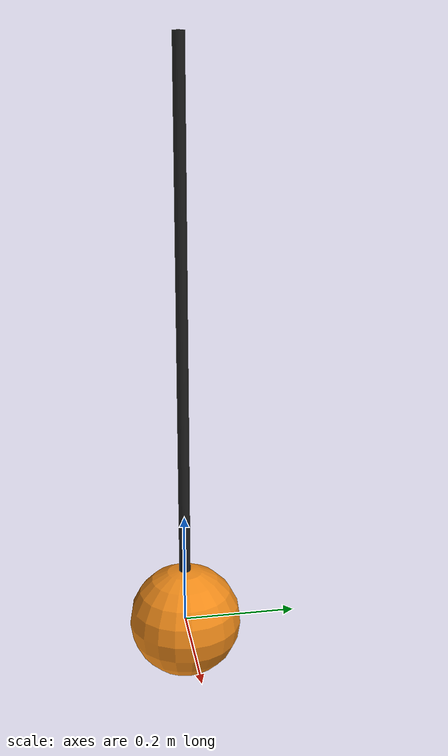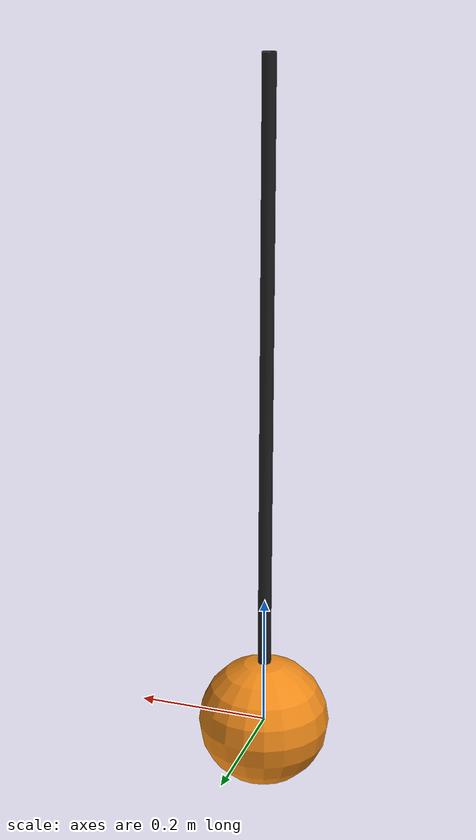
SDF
<?xml version="1.0" ?>
<sdf version="1.5">
  <model name="slung_payload_ball">
    <link name="link">
      <inertial>
        <mass>0.05</mass>
        <inertia>
          <ixx>0.00021</ixx>
          <ixy>0</ixy>
          <ixz>0</ixz>
          <iyy>0.00021</iyy>
          <iyz>0</iyz>
          <izz>0.00021</izz>
        </inertia>
      </inertial>
      <collision name="collision">
        <geometry>
          <sphere>
            <radius>0.10</radius>
          </sphere>
        </geometry>
        <surface>
          <collide_bitmask>0</collide_bitmask>
        </surface>
      </collision>
      <visual name="payload_visual">
        <geometry>
          <sphere>
            <radius>0.10</radius>
          </sphere>
        </geometry>
        <material>
          <script>
            <name>Gazebo/Orange</name>
            <uri>file://media/materials/scripts/gazebo.material</uri>
          </script>
        </material>
      </visual>
      <visual name="cable_visual">
        <pose>0 0 0.5 0 0 0</pose>
        <geometry>
          <cylinder>
            <radius>0.01</radius>
            <length>1.0</length>
          </cylinder>
        </geometry>
        <material>
          <script>
            <name>Gazebo/Black</name>
            <uri>file://media/materials/scripts/gazebo.material</uri>
          </script>
        </material>
      </visual>
      <gravity>1</gravity>
      <velocity_decay>
        <linear>0.02</linear>
        <angular>0.02</angular>
      </velocity_decay>
    </link>
  </model>
</sdf>
